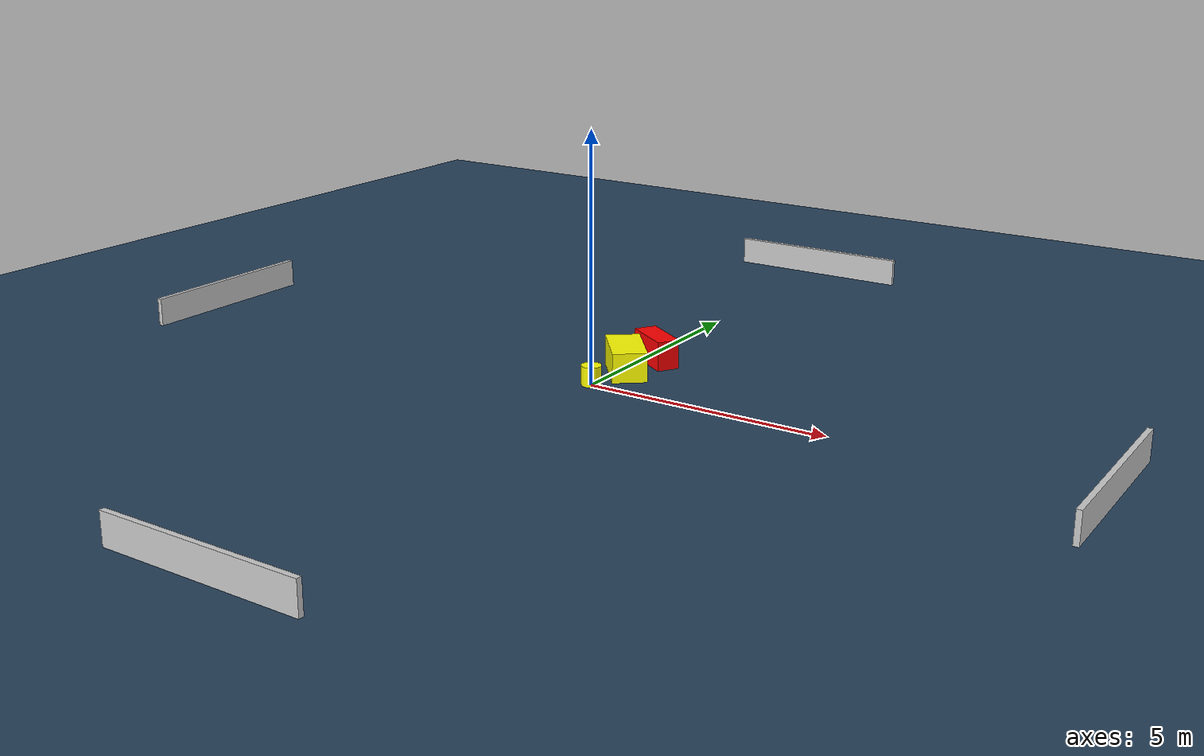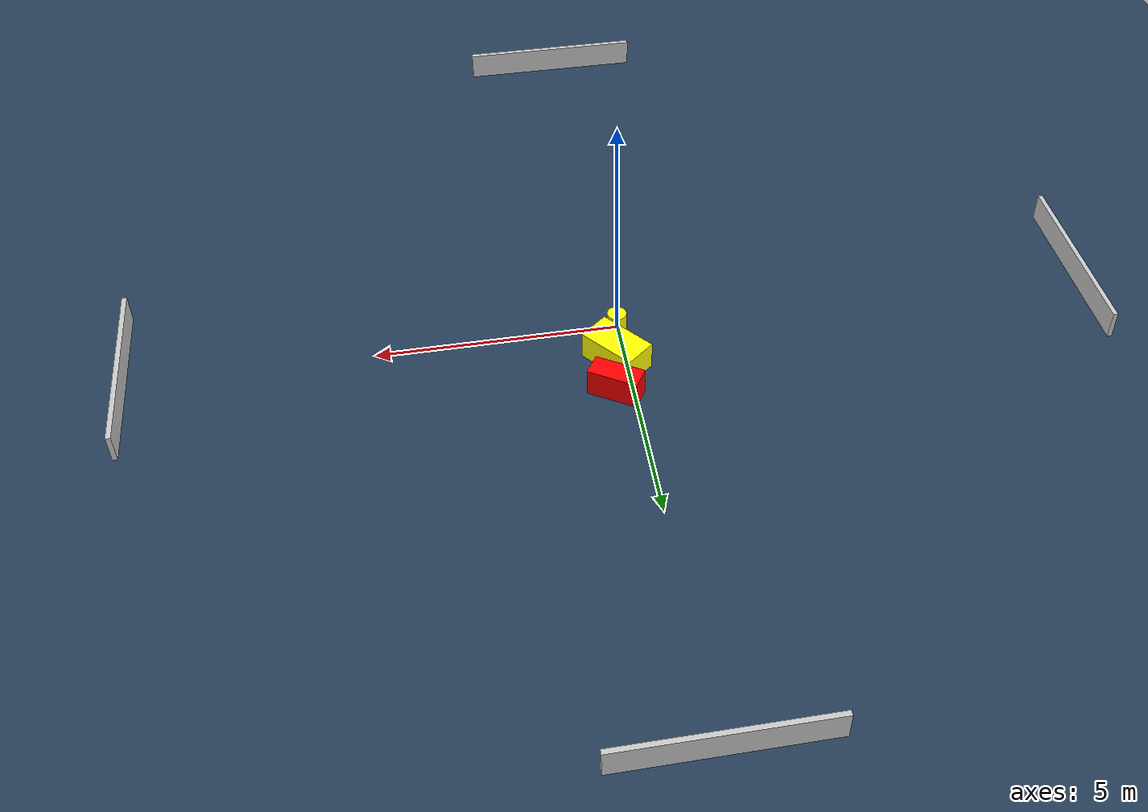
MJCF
<?xml version="1.0" ?>
<mujoco model="generated_environment">
  <option timestep="0.01" integrator="RK4" cone="elliptic"/>
  <default>
    <geom density="1"/>
  </default>
  <asset>
    <texture builtin="gradient" height="3072" name="skybox" rgb1="0.3 0.5 0.7" rgb2="0 0 0" type="skybox" width="512"/>
    <texture builtin="checker" height="300" name="groundplane" rgb1="0.2 0.3 0.4" rgb2="0.1 0.2 0.3" type="2d" width="300"/>
    <material name="groundplane" reflectance="0.2" texrepeat="5 5" texture="groundplane"/>
  </asset>
  <worldbody>
    <light dir="0 0 -1" directional="true" pos="0 0 1.5"/>
    <geom condim="3" friction="0.5 0.005 0.001" material="groundplane" name="floor" pos="0 0 0" size="0 0 0.05" type="plane"/>
    <body name="walls">
      <geom name="wall_1" condim="4" pos="-10.0 0.0 0.3" rgba="0.800000011920929 0.800000011920929 0.800000011920929 1.0" size="0.05 2.0 0.3" type="box"/>
      <geom name="wall_2" condim="4" pos="10.0 0.0 0.3" rgba="0.800000011920929 0.800000011920929 0.800000011920929 1.0" size="0.05 2.0 0.3" type="box"/>
      <geom name="wall_3" condim="4" pos="0.0 -10.0 0.3" rgba="0.800000011920929 0.800000011920929 0.800000011920929 1.0" size="2.0 0.05 0.3" type="box"/>
      <geom name="wall_4" condim="4" pos="0.0 10.0 0.3" rgba="0.800000011920929 0.800000011920929 0.800000011920929 1.0" size="2.0 0.05 0.3" type="box"/>
    </body>
    <body name="robot">
      <joint name="joint_x" type="slide" pos="0 0 0" axis="1 0 0"/>
      <joint name="joint_y" type="slide" pos="0 0 0" axis="0 1 0"/>
      <geom name="robot" type="cylinder" pos="0.0 0.0 0.2" size="0.2 0.2 0.0" mass="5.0" friction="1.0 0.005 0.0001" condim="4" rgba="1.0 1.0 0.0 1.0"/>
    </body>
    <body name="obstacle_1_movable">
      <geom name="obstacle_1_movable" condim="4" pos="0.1723156715257574 0.9794228337285306 0.3" euler="0 0 39.52438561783768" friction="0.0 0.005 0.001" rgba="1.0 1.0 0.0 1.0" size="0.34908691624499766 0.6284153467459559 0.3" type="box" mass="0.1"/>
      <joint type="free"/>
    </body>
    <body name="obstacle_2_static">
      <geom name="obstacle_2_static" condim="4" pos="0.3417592209157286 1.8624392015184472 0.3" euler="0 0 238.13426959635527" friction="0.0 0.005 0.001" rgba="1.0 0.0 0.0 1.0" size="0.23139562758021384 0.5249572098420118 0.3" type="box"/>
    </body>
  </worldbody>
  <actuator>
    <motor name="actuator_x" joint="joint_x" gear="1" ctrlrange="-1 1"/>
    <motor name="actuator_y" joint="joint_y" gear="1" ctrlrange="-1 1"/>
  </actuator>
</mujoco>
